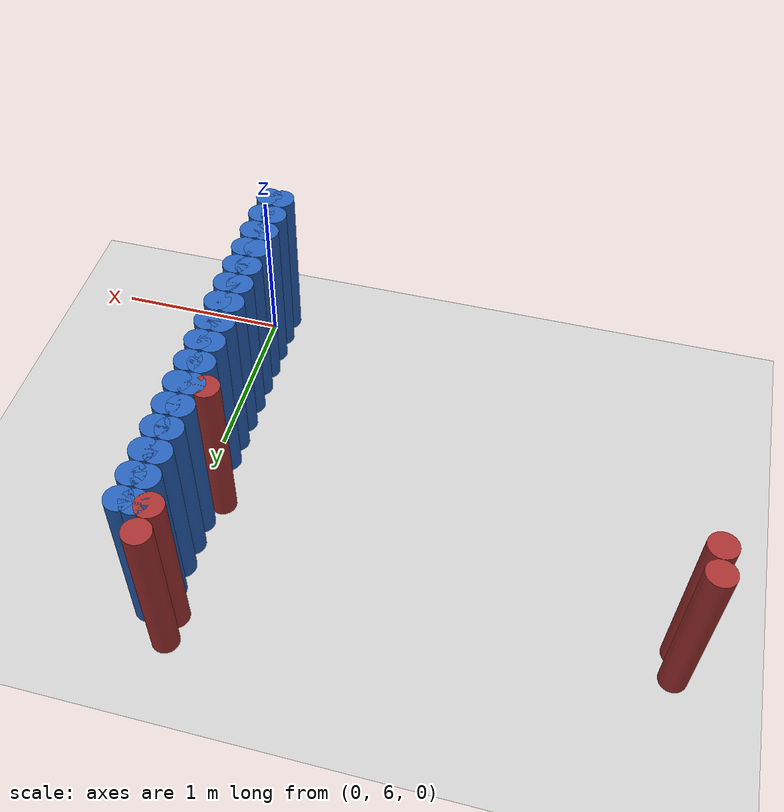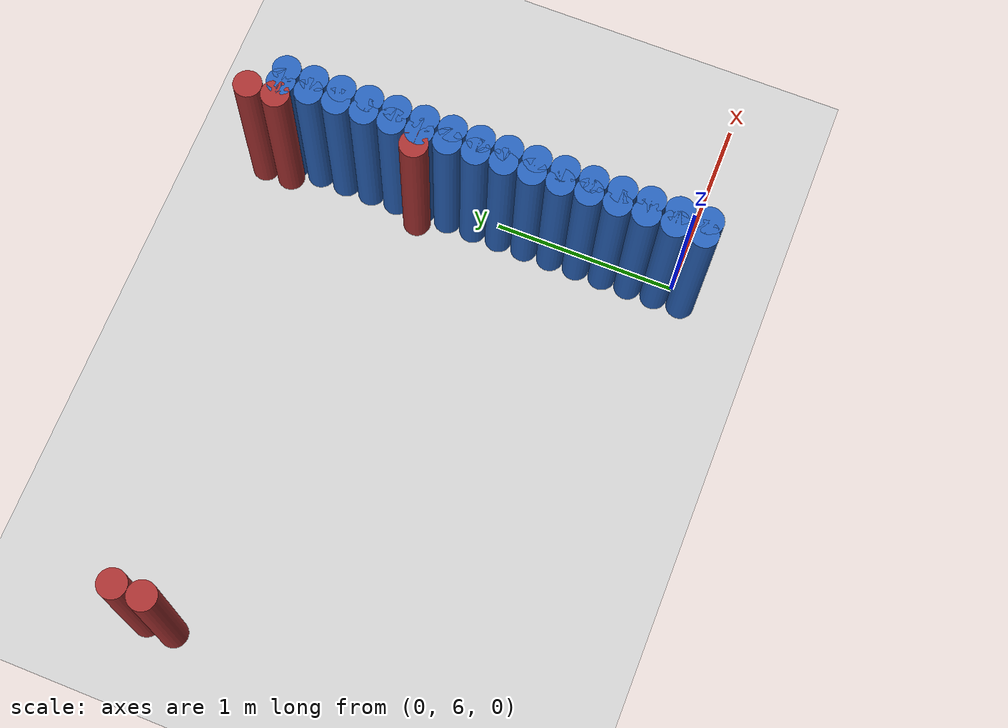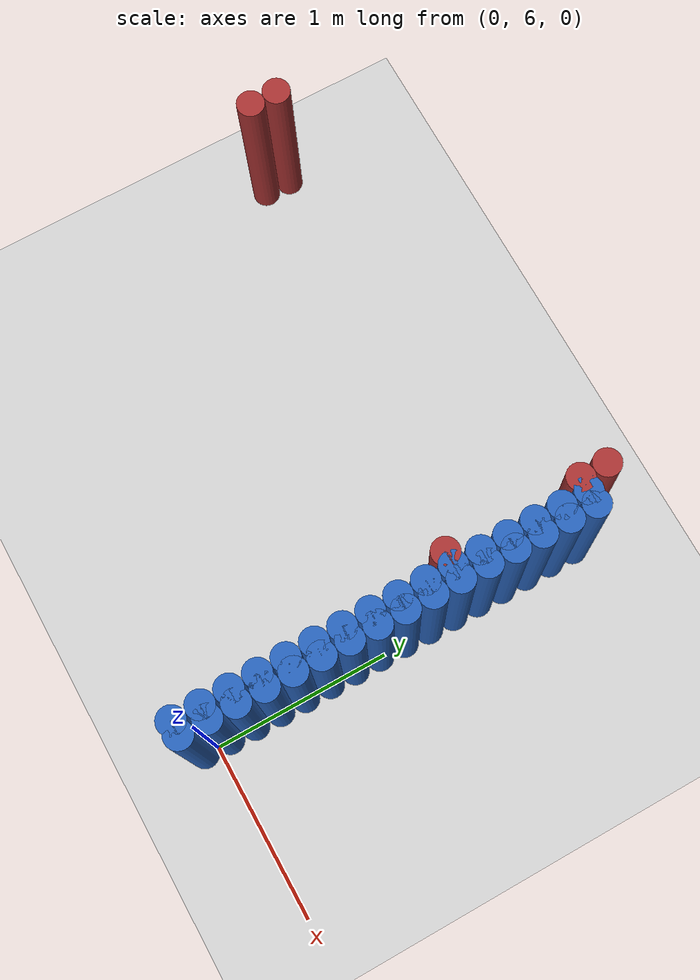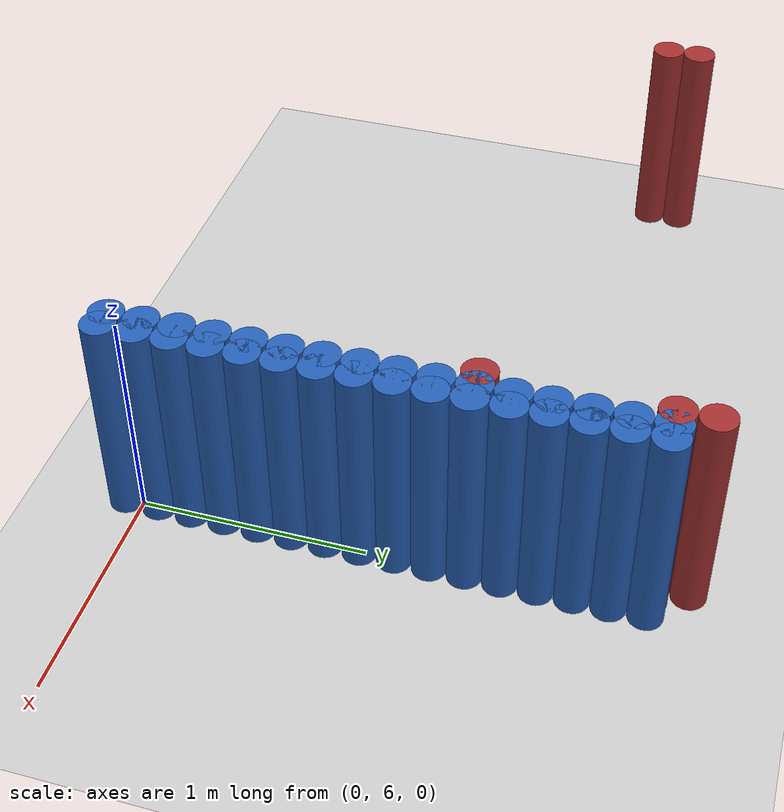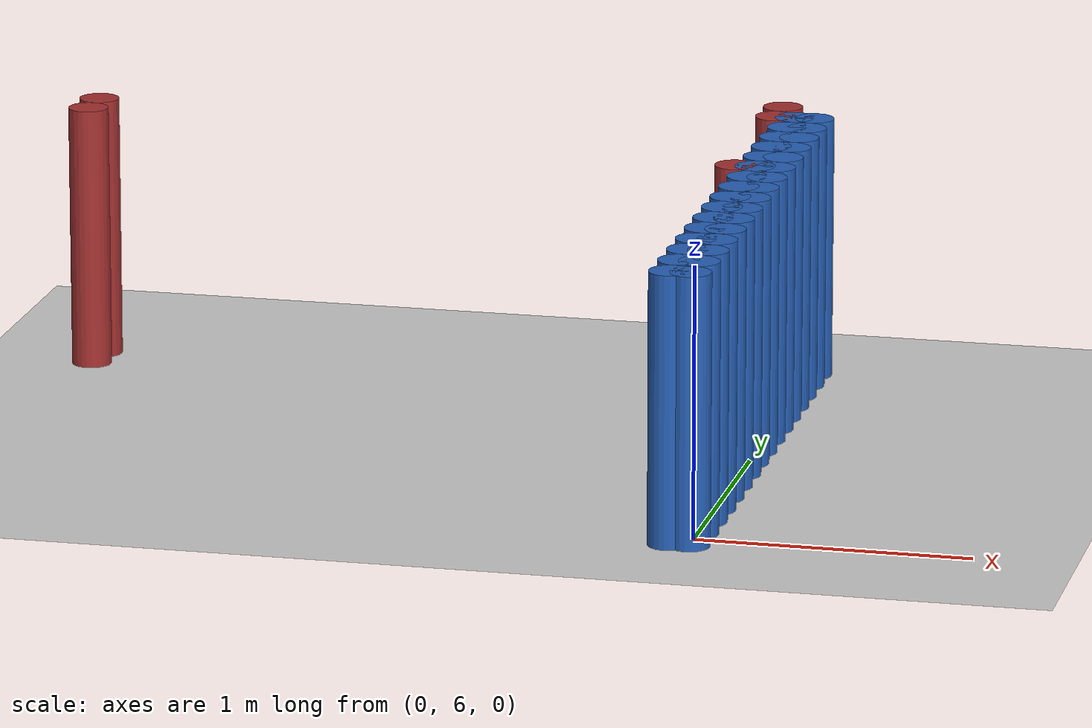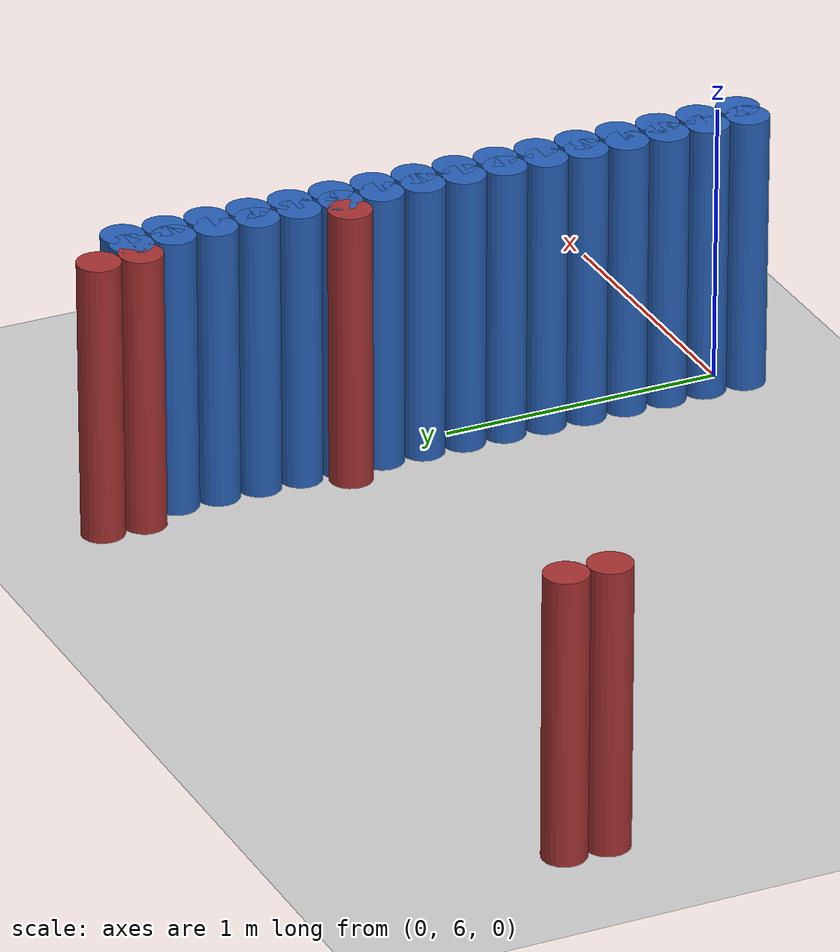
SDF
<sdf version="1.6">
 <world name="barn_world">
  <model name="ground_plane">
   <static>1</static>
   <link name="link">
    <collision name="collision">
     <geometry><plane><normal>0 0 1</normal><size>100 100</size></plane></geometry>
    </collision>
    <visual name="visual">
     <geometry><plane><normal>0 0 1</normal><size>100 100</size></plane></geometry>
     <material>
      <script><uri>file://media/materials/scripts/gazebo.material</uri><name>Gazebo/Grey</name></script>
     </material>
    </visual>
   </link>
  </model>
  <model name="unit_cylinder_170">
   <static>1</static>
   <pose>-2.7000 7.7250 0.5 0 0 0</pose>
   <link name="link">
    <collision name="collision">
     <geometry><cylinder><radius>0.075</radius><length>1</length></cylinder></geometry>
    </collision>
    <visual name="visual">
     <geometry><cylinder><radius>0.075</radius><length>1</length></cylinder></geometry>
     <material><ambient>0.648 0.192 0.192 1</ambient><diffuse>0.648 0.192 0.192 1</diffuse></material>
    </visual>
   </link>
  </model>
  <model name="unit_cylinder_171">
   <static>1</static>
   <pose>-2.7000 7.8750 0.5 0 0 0</pose>
   <link name="link">
    <collision name="collision">
     <geometry><cylinder><radius>0.075</radius><length>1</length></cylinder></geometry>
    </collision>
    <visual name="visual">
     <geometry><cylinder><radius>0.075</radius><length>1</length></cylinder></geometry>
     <material><ambient>0.648 0.192 0.192 1</ambient><diffuse>0.648 0.192 0.192 1</diffuse></material>
    </visual>
   </link>
  </model>
  <model name="unit_cylinder_172">
   <static>1</static>
   <pose>-0.1500 7.4250 0.5 0 0 0</pose>
   <link name="link">
    <collision name="collision">
     <geometry><cylinder><radius>0.075</radius><length>1</length></cylinder></geometry>
    </collision>
    <visual name="visual">
     <geometry><cylinder><radius>0.075</radius><length>1</length></cylinder></geometry>
     <material><ambient>0.648 0.192 0.192 1</ambient><diffuse>0.648 0.192 0.192 1</diffuse></material>
    </visual>
   </link>
  </model>
  <model name="unit_cylinder_173">
   <static>1</static>
   <pose>-0.1500 8.1750 0.5 0 0 0</pose>
   <link name="link">
    <collision name="collision">
     <geometry><cylinder><radius>0.075</radius><length>1</length></cylinder></geometry>
    </collision>
    <visual name="visual">
     <geometry><cylinder><radius>0.075</radius><length>1</length></cylinder></geometry>
     <material><ambient>0.648 0.192 0.192 1</ambient><diffuse>0.648 0.192 0.192 1</diffuse></material>
    </visual>
   </link>
  </model>
  <model name="unit_cylinder_174">
   <static>1</static>
   <pose>-0.1500 8.3250 0.5 0 0 0</pose>
   <link name="link">
    <collision name="collision">
     <geometry><cylinder><radius>0.075</radius><length>1</length></cylinder></geometry>
    </collision>
    <visual name="visual">
     <geometry><cylinder><radius>0.075</radius><length>1</length></cylinder></geometry>
     <material><ambient>0.648 0.192 0.192 1</ambient><diffuse>0.648 0.192 0.192 1</diffuse></material>
    </visual>
   </link>
  </model>
  <model name="unit_cylinder_181">
   <static>1</static>
   <pose>0.0000 5.9250 0.5 0 0 0</pose>
   <link name="link">
    <collision name="collision">
     <geometry><cylinder><radius>0.075</radius><length>1</length></cylinder></geometry>
    </collision>
    <visual name="visual">
     <geometry><cylinder><radius>0.075</radius><length>1</length></cylinder></geometry>
     <material><ambient>0.152 0.379 0.72 1</ambient><diffuse>0.152 0.379 0.72 1</diffuse></material>
    </visual>
   </link>
  </model>
  <model name="unit_cylinder_182">
   <static>1</static>
   <pose>0.0000 6.0750 0.5 0 0 0</pose>
   <link name="link">
    <collision name="collision">
     <geometry><cylinder><radius>0.075</radius><length>1</length></cylinder></geometry>
    </collision>
    <visual name="visual">
     <geometry><cylinder><radius>0.075</radius><length>1</length></cylinder></geometry>
     <material><ambient>0.152 0.379 0.72 1</ambient><diffuse>0.152 0.379 0.72 1</diffuse></material>
    </visual>
   </link>
  </model>
  <model name="unit_cylinder_183">
   <static>1</static>
   <pose>0.0000 6.2250 0.5 0 0 0</pose>
   <link name="link">
    <collision name="collision">
     <geometry><cylinder><radius>0.075</radius><length>1</length></cylinder></geometry>
    </collision>
    <visual name="visual">
     <geometry><cylinder><radius>0.075</radius><length>1</length></cylinder></geometry>
     <material><ambient>0.152 0.379 0.72 1</ambient><diffuse>0.152 0.379 0.72 1</diffuse></material>
    </visual>
   </link>
  </model>
  <model name="unit_cylinder_184">
   <static>1</static>
   <pose>0.0000 6.3750 0.5 0 0 0</pose>
   <link name="link">
    <collision name="collision">
     <geometry><cylinder><radius>0.075</radius><length>1</length></cylinder></geometry>
    </collision>
    <visual name="visual">
     <geometry><cylinder><radius>0.075</radius><length>1</length></cylinder></geometry>
     <material><ambient>0.152 0.379 0.72 1</ambient><diffuse>0.152 0.379 0.72 1</diffuse></material>
    </visual>
   </link>
  </model>
  <model name="unit_cylinder_185">
   <static>1</static>
   <pose>0.0000 6.5250 0.5 0 0 0</pose>
   <link name="link">
    <collision name="collision">
     <geometry><cylinder><radius>0.075</radius><length>1</length></cylinder></geometry>
    </collision>
    <visual name="visual">
     <geometry><cylinder><radius>0.075</radius><length>1</length></cylinder></geometry>
     <material><ambient>0.152 0.379 0.72 1</ambient><diffuse>0.152 0.379 0.72 1</diffuse></material>
    </visual>
   </link>
  </model>
  <model name="unit_cylinder_186">
   <static>1</static>
   <pose>0.0000 6.6750 0.5 0 0 0</pose>
   <link name="link">
    <collision name="collision">
     <geometry><cylinder><radius>0.075</radius><length>1</length></cylinder></geometry>
    </collision>
    <visual name="visual">
     <geometry><cylinder><radius>0.075</radius><length>1</length></cylinder></geometry>
     <material><ambient>0.152 0.379 0.72 1</ambient><diffuse>0.152 0.379 0.72 1</diffuse></material>
    </visual>
   </link>
  </model>
  <model name="unit_cylinder_187">
   <static>1</static>
   <pose>0.0000 6.8250 0.5 0 0 0</pose>
   <link name="link">
    <collision name="collision">
     <geometry><cylinder><radius>0.075</radius><length>1</length></cylinder></geometry>
    </collision>
    <visual name="visual">
     <geometry><cylinder><radius>0.075</radius><length>1</length></cylinder></geometry>
     <material><ambient>0.152 0.379 0.72 1</ambient><diffuse>0.152 0.379 0.72 1</diffuse></material>
    </visual>
   </link>
  </model>
  <model name="unit_cylinder_188">
   <static>1</static>
   <pose>0.0000 6.9750 0.5 0 0 0</pose>
   <link name="link">
    <collision name="collision">
     <geometry><cylinder><radius>0.075</radius><length>1</length></cylinder></geometry>
    </collision>
    <visual name="visual">
     <geometry><cylinder><radius>0.075</radius><length>1</length></cylinder></geometry>
     <material><ambient>0.152 0.379 0.72 1</ambient><diffuse>0.152 0.379 0.72 1</diffuse></material>
    </visual>
   </link>
  </model>
  <model name="unit_cylinder_189">
   <static>1</static>
   <pose>0.0000 7.1250 0.5 0 0 0</pose>
   <link name="link">
    <collision name="collision">
     <geometry><cylinder><radius>0.075</radius><length>1</length></cylinder></geometry>
    </collision>
    <visual name="visual">
     <geometry><cylinder><radius>0.075</radius><length>1</length></cylinder></geometry>
     <material><ambient>0.152 0.379 0.72 1</ambient><diffuse>0.152 0.379 0.72 1</diffuse></material>
    </visual>
   </link>
  </model>
  <model name="unit_cylinder_190">
   <static>1</static>
   <pose>0.0000 7.2750 0.5 0 0 0</pose>
   <link name="link">
    <collision name="collision">
     <geometry><cylinder><radius>0.075</radius><length>1</length></cylinder></geometry>
    </collision>
    <visual name="visual">
     <geometry><cylinder><radius>0.075</radius><length>1</length></cylinder></geometry>
     <material><ambient>0.152 0.379 0.72 1</ambient><diffuse>0.152 0.379 0.72 1</diffuse></material>
    </visual>
   </link>
  </model>
  <model name="unit_cylinder_191">
   <static>1</static>
   <pose>0.0000 7.4250 0.5 0 0 0</pose>
   <link name="link">
    <collision name="collision">
     <geometry><cylinder><radius>0.075</radius><length>1</length></cylinder></geometry>
    </collision>
    <visual name="visual">
     <geometry><cylinder><radius>0.075</radius><length>1</length></cylinder></geometry>
     <material><ambient>0.152 0.379 0.72 1</ambient><diffuse>0.152 0.379 0.72 1</diffuse></material>
    </visual>
   </link>
  </model>
  <model name="unit_cylinder_192">
   <static>1</static>
   <pose>0.0000 7.5750 0.5 0 0 0</pose>
   <link name="link">
    <collision name="collision">
     <geometry><cylinder><radius>0.075</radius><length>1</length></cylinder></geometry>
    </collision>
    <visual name="visual">
     <geometry><cylinder><radius>0.075</radius><length>1</length></cylinder></geometry>
     <material><ambient>0.152 0.379 0.72 1</ambient><diffuse>0.152 0.379 0.72 1</diffuse></material>
    </visual>
   </link>
  </model>
  <model name="unit_cylinder_193">
   <static>1</static>
   <pose>0.0000 7.7250 0.5 0 0 0</pose>
   <link name="link">
    <collision name="collision">
     <geometry><cylinder><radius>0.075</radius><length>1</length></cylinder></geometry>
    </collision>
    <visual name="visual">
     <geometry><cylinder><radius>0.075</radius><length>1</length></cylinder></geometry>
     <material><ambient>0.152 0.379 0.72 1</ambient><diffuse>0.152 0.379 0.72 1</diffuse></material>
    </visual>
   </link>
  </model>
  <model name="unit_cylinder_194">
   <static>1</static>
   <pose>0.0000 7.8750 0.5 0 0 0</pose>
   <link name="link">
    <collision name="collision">
     <geometry><cylinder><radius>0.075</radius><length>1</length></cylinder></geometry>
    </collision>
    <visual name="visual">
     <geometry><cylinder><radius>0.075</radius><length>1</length></cylinder></geometry>
     <material><ambient>0.152 0.379 0.72 1</ambient><diffuse>0.152 0.379 0.72 1</diffuse></material>
    </visual>
   </link>
  </model>
  <model name="unit_cylinder_195">
   <static>1</static>
   <pose>0.0000 8.0250 0.5 0 0 0</pose>
   <link name="link">
    <collision name="collision">
     <geometry><cylinder><radius>0.075</radius><length>1</length></cylinder></geometry>
    </collision>
    <visual name="visual">
     <geometry><cylinder><radius>0.075</radius><length>1</length></cylinder></geometry>
     <material><ambient>0.152 0.379 0.72 1</ambient><diffuse>0.152 0.379 0.72 1</diffuse></material>
    </visual>
   </link>
  </model>
  <model name="unit_cylinder_196">
   <static>1</static>
   <pose>0.0000 8.1750 0.5 0 0 0</pose>
   <link name="link">
    <collision name="collision">
     <geometry><cylinder><radius>0.075</radius><length>1</length></cylinder></geometry>
    </collision>
    <visual name="visual">
     <geometry><cylinder><radius>0.075</radius><length>1</length></cylinder></geometry>
     <material><ambient>0.152 0.379 0.72 1</ambient><diffuse>0.152 0.379 0.72 1</diffuse></material>
    </visual>
   </link>
  </model>
  <model name="unit_cylinder_246">
   <static>1</static>
   <pose>-0.0750 5.9250 0.5 0 0 0</pose>
   <link name="link">
    <collision name="collision">
     <geometry><cylinder><radius>0.075</radius><length>1</length></cylinder></geometry>
    </collision>
    <visual name="visual">
     <geometry><cylinder><radius>0.075</radius><length>1</length></cylinder></geometry>
     <material><ambient>0.152 0.379 0.72 1</ambient><diffuse>0.152 0.379 0.72 1</diffuse></material>
    </visual>
   </link>
  </model>
  <model name="unit_cylinder_248">
   <static>1</static>
   <pose>-0.0750 6.0750 0.5 0 0 0</pose>
   <link name="link">
    <collision name="collision">
     <geometry><cylinder><radius>0.075</radius><length>1</length></cylinder></geometry>
    </collision>
    <visual name="visual">
     <geometry><cylinder><radius>0.075</radius><length>1</length></cylinder></geometry>
     <material><ambient>0.152 0.379 0.72 1</ambient><diffuse>0.152 0.379 0.72 1</diffuse></material>
    </visual>
   </link>
  </model>
  <model name="unit_cylinder_250">
   <static>1</static>
   <pose>-0.0750 6.2250 0.5 0 0 0</pose>
   <link name="link">
    <collision name="collision">
     <geometry><cylinder><radius>0.075</radius><length>1</length></cylinder></geometry>
    </collision>
    <visual name="visual">
     <geometry><cylinder><radius>0.075</radius><length>1</length></cylinder></geometry>
     <material><ambient>0.152 0.379 0.72 1</ambient><diffuse>0.152 0.379 0.72 1</diffuse></material>
    </visual>
   </link>
  </model>
  <model name="unit_cylinder_252">
   <static>1</static>
   <pose>-0.0750 6.3750 0.5 0 0 0</pose>
   <link name="link">
    <collision name="collision">
     <geometry><cylinder><radius>0.075</radius><length>1</length></cylinder></geometry>
    </collision>
    <visual name="visual">
     <geometry><cylinder><radius>0.075</radius><length>1</length></cylinder></geometry>
     <material><ambient>0.152 0.379 0.72 1</ambient><diffuse>0.152 0.379 0.72 1</diffuse></material>
    </visual>
   </link>
  </model>
  <model name="unit_cylinder_254">
   <static>1</static>
   <pose>-0.0750 6.5250 0.5 0 0 0</pose>
   <link name="link">
    <collision name="collision">
     <geometry><cylinder><radius>0.075</radius><length>1</length></cylinder></geometry>
    </collision>
    <visual name="visual">
     <geometry><cylinder><radius>0.075</radius><length>1</length></cylinder></geometry>
     <material><ambient>0.152 0.379 0.72 1</ambient><diffuse>0.152 0.379 0.72 1</diffuse></material>
    </visual>
   </link>
  </model>
  <model name="unit_cylinder_256">
   <static>1</static>
   <pose>-0.0750 6.6750 0.5 0 0 0</pose>
   <link name="link">
    <collision name="collision">
     <geometry><cylinder><radius>0.075</radius><length>1</length></cylinder></geometry>
    </collision>
    <visual name="visual">
     <geometry><cylinder><radius>0.075</radius><length>1</length></cylinder></geometry>
     <material><ambient>0.152 0.379 0.72 1</ambient><diffuse>0.152 0.379 0.72 1</diffuse></material>
    </visual>
   </link>
  </model>
  <model name="unit_cylinder_258">
   <static>1</static>
   <pose>-0.0750 6.8250 0.5 0 0 0</pose>
   <link name="link">
    <collision name="collision">
     <geometry><cylinder><radius>0.075</radius><length>1</length></cylinder></geometry>
    </collision>
    <visual name="visual">
     <geometry><cylinder><radius>0.075</radius><length>1</length></cylinder></geometry>
     <material><ambient>0.152 0.379 0.72 1</ambient><diffuse>0.152 0.379 0.72 1</diffuse></material>
    </visual>
   </link>
  </model>
  <model name="unit_cylinder_260">
   <static>1</static>
   <pose>-0.0750 6.9750 0.5 0 0 0</pose>
   <link name="link">
    <collision name="collision">
     <geometry><cylinder><radius>0.075</radius><length>1</length></cylinder></geometry>
    </collision>
    <visual name="visual">
     <geometry><cylinder><radius>0.075</radius><length>1</length></cylinder></geometry>
     <material><ambient>0.152 0.379 0.72 1</ambient><diffuse>0.152 0.379 0.72 1</diffuse></material>
    </visual>
   </link>
  </model>
  <model name="unit_cylinder_262">
   <static>1</static>
   <pose>-0.0750 7.1250 0.5 0 0 0</pose>
   <link name="link">
    <collision name="collision">
     <geometry><cylinder><radius>0.075</radius><length>1</length></cylinder></geometry>
    </collision>
    <visual name="visual">
     <geometry><cylinder><radius>0.075</radius><length>1</length></cylinder></geometry>
     <material><ambient>0.152 0.379 0.72 1</ambient><diffuse>0.152 0.379 0.72 1</diffuse></material>
    </visual>
   </link>
  </model>
  <model name="unit_cylinder_264">
   <static>1</static>
   <pose>-0.0750 7.2750 0.5 0 0 0</pose>
   <link name="link">
    <collision name="collision">
     <geometry><cylinder><radius>0.075</radius><length>1</length></cylinder></geometry>
    </collision>
    <visual name="visual">
     <geometry><cylinder><radius>0.075</radius><length>1</length></cylinder></geometry>
     <material><ambient>0.152 0.379 0.72 1</ambient><diffuse>0.152 0.379 0.72 1</diffuse></material>
    </visual>
   </link>
  </model>
  <model name="unit_cylinder_266">
   <static>1</static>
   <pose>-0.0750 7.4250 0.5 0 0 0</pose>
   <link name="link">
    <collision name="collision">
     <geometry><cylinder><radius>0.075</radius><length>1</length></cylinder></geometry>
    </collision>
    <visual name="visual">
     <geometry><cylinder><radius>0.075</radius><length>1</length></cylinder></geometry>
     <material><ambient>0.152 0.379 0.72 1</ambient><diffuse>0.152 0.379 0.72 1</diffuse></material>
    </visual>
   </link>
  </model>
  <model name="unit_cylinder_268">
   <static>1</static>
   <pose>-0.0750 7.5750 0.5 0 0 0</pose>
   <link name="link">
    <collision name="collision">
     <geometry><cylinder><radius>0.075</radius><length>1</length></cylinder></geometry>
    </collision>
    <visual name="visual">
     <geometry><cylinder><radius>0.075</radius><length>1</length></cylinder></geometry>
     <material><ambient>0.152 0.379 0.72 1</ambient><diffuse>0.152 0.379 0.72 1</diffuse></material>
    </visual>
   </link>
  </model>
  <model name="unit_cylinder_270">
   <static>1</static>
   <pose>-0.0750 7.7250 0.5 0 0 0</pose>
   <link name="link">
    <collision name="collision">
     <geometry><cylinder><radius>0.075</radius><length>1</length></cylinder></geometry>
    </collision>
    <visual name="visual">
     <geometry><cylinder><radius>0.075</radius><length>1</length></cylinder></geometry>
     <material><ambient>0.152 0.379 0.72 1</ambient><diffuse>0.152 0.379 0.72 1</diffuse></material>
    </visual>
   </link>
  </model>
  <model name="unit_cylinder_272">
   <static>1</static>
   <pose>-0.0750 7.8750 0.5 0 0 0</pose>
   <link name="link">
    <collision name="collision">
     <geometry><cylinder><radius>0.075</radius><length>1</length></cylinder></geometry>
    </collision>
    <visual name="visual">
     <geometry><cylinder><radius>0.075</radius><length>1</length></cylinder></geometry>
     <material><ambient>0.152 0.379 0.72 1</ambient><diffuse>0.152 0.379 0.72 1</diffuse></material>
    </visual>
   </link>
  </model>
  <model name="unit_cylinder_274">
   <static>1</static>
   <pose>-0.0750 8.0250 0.5 0 0 0</pose>
   <link name="link">
    <collision name="collision">
     <geometry><cylinder><radius>0.075</radius><length>1</length></cylinder></geometry>
    </collision>
    <visual name="visual">
     <geometry><cylinder><radius>0.075</radius><length>1</length></cylinder></geometry>
     <material><ambient>0.152 0.379 0.72 1</ambient><diffuse>0.152 0.379 0.72 1</diffuse></material>
    </visual>
   </link>
  </model>
  <model name="unit_cylinder_276">
   <static>1</static>
   <pose>-0.0750 8.1750 0.5 0 0 0</pose>
   <link name="link">
    <collision name="collision">
     <geometry><cylinder><radius>0.075</radius><length>1</length></cylinder></geometry>
    </collision>
    <visual name="visual">
     <geometry><cylinder><radius>0.075</radius><length>1</length></cylinder></geometry>
     <material><ambient>0.152 0.379 0.72 1</ambient><diffuse>0.152 0.379 0.72 1</diffuse></material>
    </visual>
   </link>
  </model>
 </world>
</sdf>
